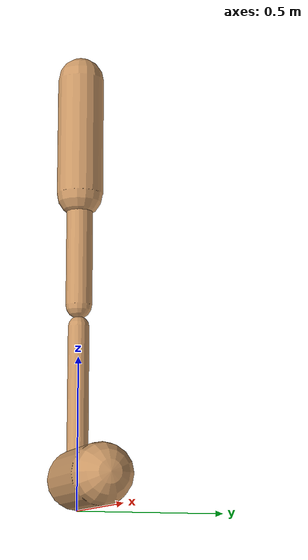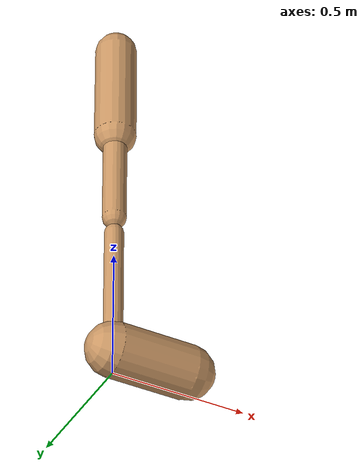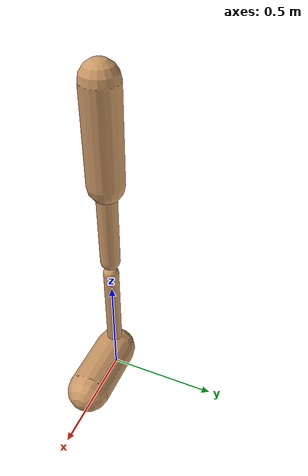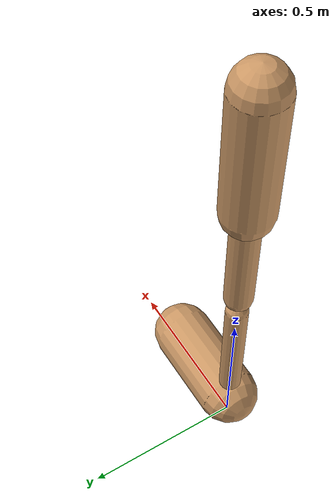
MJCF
<mujoco model="walker2d">
  <compiler angle="degree" coordinate="global" inertiafromgeom="true" />
  <default>
    <joint armature="0.01" damping=".1" limited="true" />
    <geom conaffinity="0" condim="3" contype="1" density="1000" friction="0.8 .1 .1" rgba="0.8 0.6 .4 1" />
  </default>
  <option integrator="RK4" timestep="0.002" />
  <worldbody>

    <body name="torso" pos="0 0 -0.15090789982674968">
      <joint armature="0" axis="1 0 0" damping="0" limited="false" name="ignorex" pos="0 0 0" stiffness="0" type="slide" />
      <joint armature="0" axis="0 0 1" damping="0" limited="false" name="ignorez" pos="0 0 0" ref="1.25" stiffness="0" type="slide" />
      <joint armature="0" axis="0 1 0" damping="0" limited="false" name="ignorey" pos="0 0 0" stiffness="0" type="hinge" />
      <geom fromto="0 0 1.45 0 0 1.05" name="torso_geom" size="0.07680765219932487" type="capsule" />
      <body name="thigh">
        <joint axis="0 -1 0" name="thigh_joint" pos="0 0 1.05" range="-150 0" type="hinge" />
        <geom fromto="0.0 0.0 1.05 0.0 0.0 0.6714826893916183" name="thigh_geom" size="0.04365475374825778" type="capsule" />
        <body name="leg" pos="0.0 0.0 0.07148268939161828">
          <joint axis="0 -1 0" name="leg_joint" pos="0 0 0.6" range="-150 0" type="hinge" />
          <geom fromto="0.0 0.0 0.6 0.0 0.0 0.1794252104351314" name="leg_geom" size="0.03492380299860622" type="capsule" />
          <body name="foot" pos="0.0 0.0 0.0794252104351314">
            <joint axis="0 -1 0" name="foot_joint" pos="0 0 0.1" range="-45 45" type="hinge" />
            <geom fromto="-0.0 0.0 0.1 0.2839320275126445 0.0 0.1" name="foot_geom" size="0.09748799963470375" type="capsule" />
          </body>
        </body>
      </body>

      <body name="thigh_left">
        <joint axis="0 -1 0" name="thigh_left_joint" pos="0 0 1.05" range="-150 0" type="hinge" />
        <geom fromto="0.0 0.0 1.05 0.0 0.0 0.6714826893916183" name="thigh_left_geom" rgba=".7 .3 .6 1" size="0.04365475374825778" type="capsule" />
        <body name="leg_left" pos="0.0 0.0 0.07148268939161828">
          <joint axis="0 -1 0" name="leg_left_joint" pos="0 0 0.6" range="-150 0" type="hinge" />
          <geom fromto="0.0 0.0 0.6 0.0 0.0 0.1794252104351314" name="leg_left_geom" rgba=".7 .3 .6 1" size="0.03492380299860622" type="capsule" />
          <body name="foot_left" pos="0.0 0.0 0.0794252104351314">
            <joint axis="0 -1 0" name="foot_left_joint" pos="0 0 0.1" range="-45 45" type="hinge" />
            <geom fromto="-0.0 0.0 0.1 0.2839320275126445 0.0 0.1" name="foot_left_geom" rgba=".7 .3 .6 1" size="0.09748799963470375" type="capsule" />
          </body>
        </body>
      </body>
    </body>
  </worldbody>
  <actuator>

    <motor ctrllimited="true" ctrlrange="-1.0 1.0" gear="100" joint="thigh_joint" />
    <motor ctrllimited="true" ctrlrange="-1.0 1.0" gear="100" joint="leg_joint" />
    <motor ctrllimited="true" ctrlrange="-1.0 1.0" gear="100" joint="foot_joint" />
    <motor ctrllimited="true" ctrlrange="-1.0 1.0" gear="100" joint="thigh_left_joint" />
    <motor ctrllimited="true" ctrlrange="-1.0 1.0" gear="100" joint="leg_left_joint" />
    <motor ctrllimited="true" ctrlrange="-1.0 1.0" gear="100" joint="foot_left_joint" />

  </actuator>
</mujoco>
